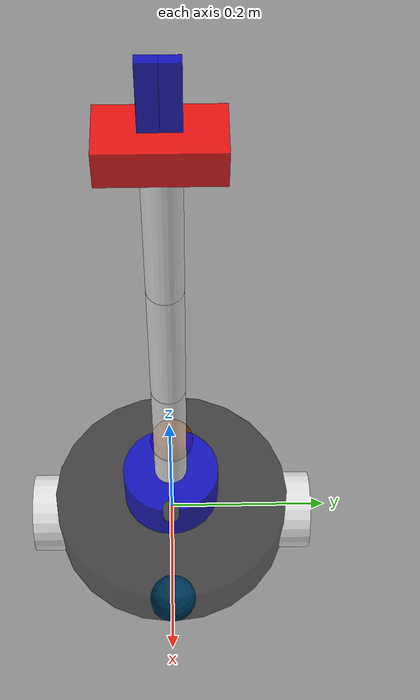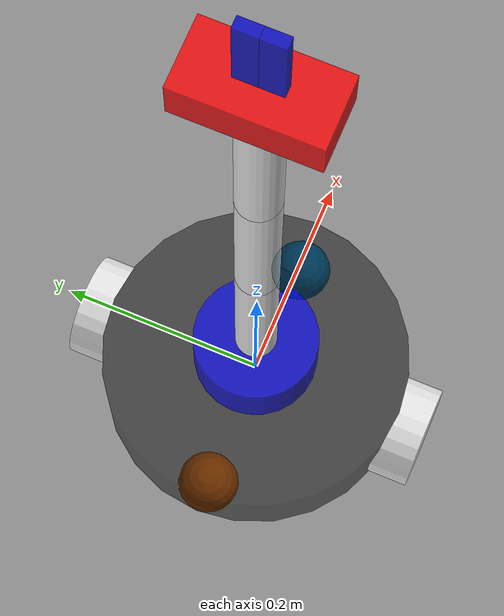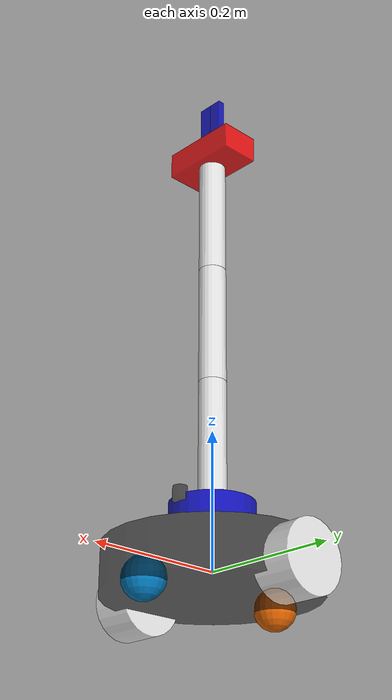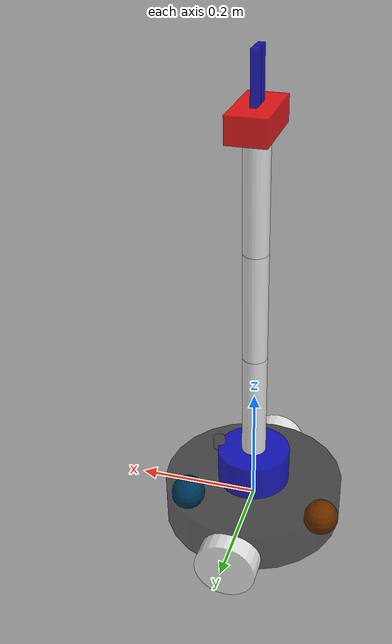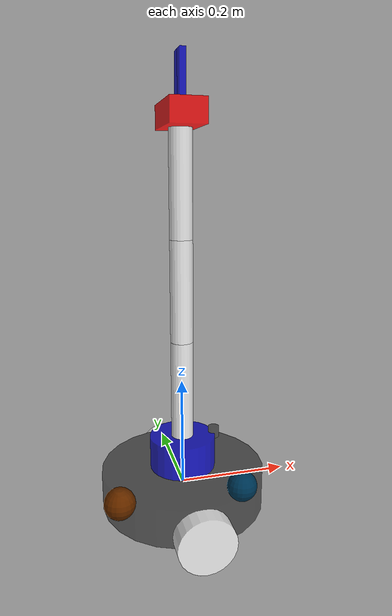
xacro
<?xml version="1.0"?>
<robot name="me332_robot" xmlns:xacro="http://ros.org/wiki/xacro">

  <xacro:property name="wheel_radius" value="0.05"/>
  <xacro:property name="wheel_width" value="0.06"/>
  <xacro:property name="base_radius" value="0.15"/>
  <xacro:property name="base_height" value="0.07"/>

  <xacro:property name="cone_radius" value="0.06"/>
  <xacro:property name="cone_height" value="0.06"/>

  <xacro:property name="arm_radius" value="0.02"/>
  <xacro:property name="arm_length" value="0.18"/>

  <xacro:property name="gripper_base_length" value="0.06"/>
  <xacro:property name="gripper_base_width" value="0.12"/>
  <xacro:property name="gripper_base_height" value="0.04"/>
  <xacro:property name="gripper_finger_height" value="0.01"/>
  <xacro:property name="finger_mass" value="0.05"/>

  <xacro:property name="lidar_radius" value="0.01"/>
  <xacro:property name="lidar_height" value="0.02"/>
  <xacro:property name="lidar_mass" value="0.01"/>

  <xacro:property name="finger_lx" value="0.01"/>
  <xacro:property name="finger_ly" value="0.02"/>
  <xacro:property name="finger_lz" value="0.08"/>

  <xacro:property name="omni_radius" value="${1.3*wheel_radius-0.5*base_height}"/>

  <material name="blue"><color rgba="0 0 0.8 0.8"/></material>
  <material name="black"><color rgba="0 0 0 0.5"/></material>
  <material name="white"><color rgba="1 1 1 0.8"/></material>
  <material name="red"><color rgba="1 0 0 0.8"/></material>

  <!-- inertia -->
  <xacro:macro name="cylinder_inertia" params="mass radius length">
    <inertial>
      <origin xyz="0 0 0" rpy="0 0 0"/>
      <mass value="${mass}"/>
      <inertia ixx="${mass * (3*radius*radius + length*length)/12}" ixy="0" ixz="0"
               iyy="${mass * (3*radius*radius + length*length)/12}" iyz="0"
               izz="${mass * radius*radius / 2}"/>
    </inertial>
  </xacro:macro>

  <xacro:macro name="box_inertia" params="mass lx ly lz">
    <inertial>
      <origin xyz="0 0 0" rpy="0 0 0"/>
      <mass value="${mass}"/>
      <inertia ixx="${mass*(ly*ly + lz*lz)/12}" ixy="0" ixz="0"
               iyy="${mass*(lx*lx + lz*lz)/12}" iyz="0"
               izz="${mass*(lx*lx + ly*ly)/12}"/>
    </inertial>
  </xacro:macro>

  <xacro:macro name="sphere_inertia" params="mass radius">
    <inertial>
      <mass value="${mass}"/>
      <inertia ixx="${(2/5) * mass * (radius*radius)}" ixy="0.0" ixz="0.0" iyy="${(2/5) * mass * (radius*radius)}" iyz="0.0" izz="${(2/5) * mass * (radius*radius)}"/>
    </inertial>
  </xacro:macro>

  <xacro:macro name="wheel" params="prefix suffix reflect">
    <link name="${prefix}_${suffix}_wheel">
      <visual>
        <origin xyz="0 0 0" rpy="${pi/2} 0 0"/>
        <geometry>
          <cylinder radius="${wheel_radius}" length="${wheel_width}"/>
        </geometry>
        <material name="white"/>
      </visual>
      <collision>
        <origin xyz="0 0 0" rpy="${pi/2} 0 0"/>
        <geometry>
          <cylinder radius="${wheel_radius}" length="${wheel_width}"/>
        </geometry>
        <surface>
          <friction>
            <ode>
              <mu>1.0</mu>
              <mu2>1.0</mu2>
            </ode>
          </friction>
        </surface>
      </collision>
      <xacro:cylinder_inertia mass="0.5" radius="${wheel_radius}" length="${wheel_width}"/>
    </link>

    <joint name="${prefix}_${suffix}_wheel_joint" type="continuous">
      <parent link="base_link"/>
      <child link="${prefix}_${suffix}_wheel"/>
      <origin xyz="0 ${reflect * base_radius} -${wheel_radius*0.3}" rpy="0 0 0"/>
      <axis xyz="0 1 0"/>
    </joint>
  </xacro:macro>

  <link name="base_footprint">
    <xacro:box_inertia mass="0.0" lx="0.0" ly="0.0" lz="0.0"/>
  </link>

  <joint name="base_footprint_joint" type="fixed">
    <parent link="base_footprint"/>
    <child link="base_link"/>
    <origin xyz="0 0 0" rpy="0 0 0"/>
  </joint>

  <link name="base_link">
    <visual>
      <origin xyz="0 0 0" rpy="0 0 0"/>
      <geometry>
        <cylinder radius="${base_radius}" length="${base_height}"/>
      </geometry>
      <material name="black"/>
    </visual>
    <collision>
      <origin xyz="0 0 0" rpy="0 0 0"/>
      <geometry>
        <cylinder radius="${base_radius}" length="${base_height}"/>
      </geometry>
    </collision>
    <xacro:cylinder_inertia mass="2" radius="${base_radius}" length="${base_height}"/>
  </link>

  <xacro:wheel prefix="base" suffix="left" reflect="1"/>
  <xacro:wheel prefix="base" suffix="right" reflect="-1"/>

  <link name="omni_wheel_front">
    <visual>
      <origin xyz="${base_radius-0.03} 0 -${base_height/2-0.03}" rpy="0 0 0"/>
      <geometry>
        <sphere radius="0.03"/>
      </geometry>
    </visual>
    <collision>
      <origin xyz="${base_radius-0.03} 0 -${base_height/2-0.03}" rpy="0 0 0"/>
      <geometry>
        <sphere radius="0.03"/>
      </geometry>
      <material name="white"/>
    </collision>
    <xacro:sphere_inertia mass="0.1" radius="0.03"/>
  </link>
  <!-- try "omni_radius" to replace 0.03 if have to change total size. -->
  <!-- Make balancing ball low-friction so it doesn't lock the chassis -->
  <gazebo reference="omni_wheel_front">
    <surface>
      <friction>
        <ode>
          <mu>0.0</mu>
          <mu2>0.0</mu2>
        </ode>
      </friction>
    </surface>
  </gazebo>

  <joint name="base_to_omni_front" type="fixed">
    <parent link="base_link"/>
    <child link="omni_wheel_front"/>
    <!-- Lift slightly so drive wheels carry the weight -->
    <origin xyz="0 0 -${base_height/2 - 0.01}" rpy="0 0 0"/>
  </joint>

  <link name="omni_wheel_back">
    <visual>
      <origin xyz="-${base_radius-0.03} 0 -${base_height/2-0.03}" rpy="0 0 0"/>
      <geometry>
        <sphere radius="0.03"/>
      </geometry>
    </visual>
    <collision>
      <origin xyz="-${base_radius-0.03} 0 -${base_height/2-0.03}" rpy="0 0 0"/>
      <geometry>
        <sphere radius="0.03"/>
      </geometry>
      <material name="white"/>
    </collision>
    <xacro:sphere_inertia mass="0.1" radius="0.03"/>
  </link>
  <!-- try "omni_radius" to replace 0.03 if have to change total size. -->
  <!-- Make balancing ball low-friction so it doesn't lock the chassis -->
  <gazebo reference="omni_wheel_back">
    <surface>
      <friction>
        <ode>
          <mu>0.0</mu>
          <mu2>0.0</mu2>
        </ode>
      </friction>
    </surface>
  </gazebo>

  <joint name="base_to_omni_back" type="fixed">
    <parent link="base_link"/>
    <child link="omni_wheel_back"/>
    <!-- Lift slightly so drive wheels carry the weight -->
    <origin xyz="0 0 -${base_height/2 - 0.01}" rpy="0 0 0"/>
  </joint>

  <link name="cone_link">
    <visual>
      <origin xyz="0 0 ${cone_height/2}" rpy="0 0 0"/>
      <geometry>
        <cylinder radius="${cone_radius}" length="${cone_height}"/>
      </geometry>
      <material name="blue"/>
    </visual>
    <collision>
      <origin xyz="0 0 ${cone_height/2}" rpy="0 0 0"/>
      <geometry>
        <cylinder radius="${cone_radius}" length="${cone_height}"/>
      </geometry>
    </collision>
    <xacro:cylinder_inertia mass="2.0" radius="${cone_radius}" length="${cone_height}"/>
  </link>

  <joint name="base_to_cone" type="continuous">
    <parent link="base_link"/>
    <child link="cone_link"/>
    <origin xyz="0 0 ${base_height/2}" rpy="0 0 0"/>
    <axis xyz="0 0 1"/>
    <dynamics damping="2.0" friction="0.5"/>
  </joint>

  <!-- lidar -->
  <link name="laser_link">
    <visual>
      <origin xyz="0 0 0" rpy="0 0 0"/>
      <geometry>
        <cylinder radius="${lidar_radius}" length="${lidar_height}"/>
      </geometry>
      <material name="black"/>
    </visual>
    <collision>
      <origin xyz="${cone_radius} 0 ${base_height/2 + cone_height}" rpy="0 0 0"/>
      <geometry>
        <cylinder radius="${lidar_radius}" length="${lidar_height}"/>
      </geometry>
    </collision>
    <xacro:cylinder_inertia mass="${lidar_mass}" radius="${lidar_radius}" length="${lidar_height}"/>
  </link>

  <joint name="base_to_laser" type="fixed">
    <parent link="base_link"/>
    <child link="laser_link"/>
    <origin xyz="${cone_radius} 0 ${base_height/2 + cone_height}" rpy="0 0 0"/>
  </joint>

  <!-- Gazebo GPU lidar publishing /scan (align with robot_model.xacro) -->
  <gazebo reference="laser_link">
    <sensor name="lidar_sensor" type="gpu_lidar">
      <always_on>true</always_on>
      <update_rate>10</update_rate>
      <visualize>true</visualize>
      <topic>/scan</topic>
      <gz_frame_id>laser_link</gz_frame_id>
      <ray>
        <scan>
          <horizontal>
            <samples>360</samples>
            <resolution>1</resolution>
            <min_angle>0</min_angle>
            <max_angle>6.28319</max_angle>
          </horizontal>
        </scan>
        <range>
          <min>0.1</min>
          <max>10.0</max>
          <resolution>0.01</resolution>
        </range>
        <noise>
          <type>gaussian</type>
          <mean>0.0</mean>
          <stddev>0.01</stddev>
        </noise>
      </ray>
    </sensor>
  </gazebo>

  <!-- Use Gazebo (Ignition) native systems for sensors and diff drive, keep omni wheel geometry unchanged -->
  <gazebo>
    <plugin filename="libgz-sim-sensors-system" name="gz::sim::systems::Sensors">
      <render_engine>ogre2</render_engine>
    </plugin>
    <plugin filename="libgz-sim-joint-state-publisher-system" name="gz::sim::systems::JointStatePublisher">
      <topic>/joint_states</topic>
    </plugin>
    <plugin filename="libgz-sim-diff-drive-system" name="gz::sim::systems::DiffDrive">
      <left_joint>base_left_wheel_joint</left_joint>
      <right_joint>base_right_wheel_joint</right_joint>
      <wheel_separation>${base_radius*2}</wheel_separation>
      <wheel_radius>${wheel_radius}</wheel_radius>
      <topic>/cmd_vel</topic>
      <odom_topic>/odom</odom_topic>
      <frame>odom</frame>
      <publish_odom>true</publish_odom>
      <publish_odom_tf>true</publish_odom_tf>
      <robot_base_frame>base_footprint</robot_base_frame>
    </plugin>
  </gazebo>

  <ros2_control name="ArmSystem" type="system">
    <hardware>
      <plugin>gz_ros2_control/GazeboSimSystem</plugin>
    </hardware>
    <joint name="base_to_cone">
      <command_interface name="position"/>
      <state_interface name="position"/>
      <state_interface name="velocity"/>
    </joint>

    <joint name="cone_to_lower">
      <command_interface name="position"/>
      <state_interface name="position"/>
      <state_interface name="velocity"/>
    </joint>
    <joint name="lower_to_middle">
      <command_interface name="position"/>
      <state_interface name="position"/>
      <state_interface name="velocity"/>
    </joint>
    <joint name="middle_to_upper">
      <command_interface name="position"/>
      <state_interface name="position"/>
      <state_interface name="velocity"/>
    </joint>
    <joint name="gripper_to_finger_left">
      <command_interface name="position"/>
      <state_interface name="position"/>
      <state_interface name="velocity"/>
    </joint>
    <joint name="gripper_to_finger_right">
      <command_interface name="position"/>
      <state_interface name="position"/>
      <state_interface name="velocity"/>
    </joint>
  </ros2_control>

  <gazebo>
    <plugin filename="gz_ros2_control-system" name="gz_ros2_control::GazeboSimROS2ControlPlugin">
      <robot_param>robot_description</robot_param>
      <robot_param_node>robot_state_publisher</robot_param_node>
      <parameters>$(find me332)/config/ros2_controller.yaml</parameters>
    </plugin>
  </gazebo>

  <link name="arm_lower">
    <visual>
      <origin xyz="0 0 ${arm_length/2}" rpy="0 0 0"/>
      <geometry>
        <cylinder radius="${arm_radius}" length="${arm_length}"/>
      </geometry>
      <material name="white"/>
    </visual>
    <collision>
      <origin xyz="0 0 ${arm_length/2}" rpy="0 0 0"/>
      <geometry>
        <cylinder radius="${arm_radius}" length="${arm_length}"/>
      </geometry>
    </collision>
    <xacro:cylinder_inertia mass="0.4" radius="${arm_radius}" length="${arm_length}"/>
  </link>

  <joint name="cone_to_lower" type="revolute">
    <parent link="cone_link"/>
    <child link="arm_lower"/>
    <origin xyz="0 0 ${cone_height}" rpy="0 0 0"/>
    <axis xyz="0 1 0"/>
    <limit lower="${-pi/2}" upper="${pi/2}" effort="10" velocity="1.0"/>
    <dynamics damping="2.0" friction="0.5"/>
  </joint>

  <link name="arm_middle">
    <visual>
      <origin xyz="0 0 ${arm_length/2}" rpy="0 0 0"/>
      <geometry>
        <cylinder radius="${arm_radius}" length="${arm_length}"/>
      </geometry>
      <material name="white"/>
    </visual>
    <collision>
      <origin xyz="0 0 ${arm_length/2}" rpy="0 0 0"/>
      <geometry>
        <cylinder radius="${arm_radius}" length="${arm_length}"/>
      </geometry>
    </collision>
    <xacro:cylinder_inertia mass="0.4" radius="${arm_radius}" length="${arm_length}"/>
  </link>

  <joint name="lower_to_middle" type="revolute">
    <parent link="arm_lower"/>
    <child link="arm_middle"/>
    <origin xyz="0 0 ${arm_length}" rpy="0 0 0"/>
    <axis xyz="0 1 0"/>
    <limit lower="${-pi/2}" upper="${pi/2}" effort="10" velocity="1.0"/>
    <dynamics damping="2.0" friction="0.5"/>
  </joint>

  <link name="arm_upper">
    <visual>
      <origin xyz="0 0 ${arm_length/2}" rpy="0 0 0"/>
      <geometry>
        <cylinder radius="${arm_radius}" length="${arm_length}"/>
      </geometry>
      <material name="white"/>
    </visual>
    <collision>
      <origin xyz="0 0 ${arm_length/2}" rpy="0 0 0"/>
      <geometry>
        <cylinder radius="${arm_radius}" length="${arm_length}"/>
      </geometry>
    </collision>
    <xacro:cylinder_inertia mass="0.4" radius="${arm_radius}" length="${arm_length}"/>
  </link>

  <joint name="middle_to_upper" type="revolute">
    <parent link="arm_middle"/>
    <child link="arm_upper"/>
    <origin xyz="0 0 ${arm_length}" rpy="0 0 0"/>
    <axis xyz="0 1 0"/>
    <limit lower="${-pi/2}" upper="${pi/2}" effort="10" velocity="1.0"/>
    <dynamics damping="2.0" friction="0.5"/>
  </joint>

  <!-- gripper -->
  <link name="gripper_base">
    <visual>
      <origin xyz="0 0 ${gripper_base_height/2}" rpy="0 0 0"/>
      <geometry>
        <box size="${gripper_base_length} ${gripper_base_width} ${gripper_base_height}"/>
      </geometry>
      <material name="red"/>
    </visual>
    <collision>
      <origin xyz="0 0 ${gripper_base_height/2}" rpy="0 0 0"/>
      <geometry>
        <box size="${gripper_base_length} ${gripper_base_width} ${gripper_base_height}"/>
      </geometry>
    </collision>
    <xacro:box_inertia mass="0.3" lx="${gripper_base_length}" ly="${gripper_base_width}" lz="${gripper_base_height}"/>
  </link>

  <joint name="arm_upper_to_gripper" type="fixed">
    <parent link="arm_upper"/>
    <child link="gripper_base"/>
    <origin xyz="0 0 ${arm_length}" rpy="0 0 0"/>
  </joint>

  <xacro:macro name="gripper_finger" params="suffix reflect">
    <link name="finger_${suffix}">
      <visual>
        <origin xyz="0 ${reflect*finger_ly/2} ${gripper_base_height/2 + finger_lz/2}" rpy="0 0 0"/>
        <geometry>
          <box size="${finger_lx} ${finger_ly} ${finger_lz}"/>
        </geometry>
        <material name="blue"/>
      </visual>
      <collision>
        <origin xyz="0 ${reflect*finger_ly/2} ${gripper_base_height/2 + finger_lz/2}" rpy="0 0 0"/>
        <geometry>
          <box size="${finger_lx} ${finger_ly} ${finger_lz}"/>
        </geometry>
      </collision>
      <xacro:box_inertia mass="${finger_mass}"
                         lx="${finger_lx}"
                         ly="${finger_ly}"
                         lz="${finger_lz}"/>
    </link>

    <joint name="gripper_to_finger_${suffix}" type="prismatic">
      <parent link="gripper_base"/>
      <child link="finger_${suffix}"/>
      <origin xyz="0 0 ${0.8*gripper_base_height/2}" rpy="0 0 0"/>
      <axis xyz="0 ${reflect} 0"/> <!-- 根据reflect调整轴方向 -->
      <limit lower="0" upper="0.04" effort="10" velocity="0.5"/>
      <dynamics damping="1.0" friction="0.5"/>
    </joint>
  </xacro:macro>

  <xacro:gripper_finger suffix="left" reflect="1"/>
  <xacro:gripper_finger suffix="right" reflect="-1"/>

</robot>
